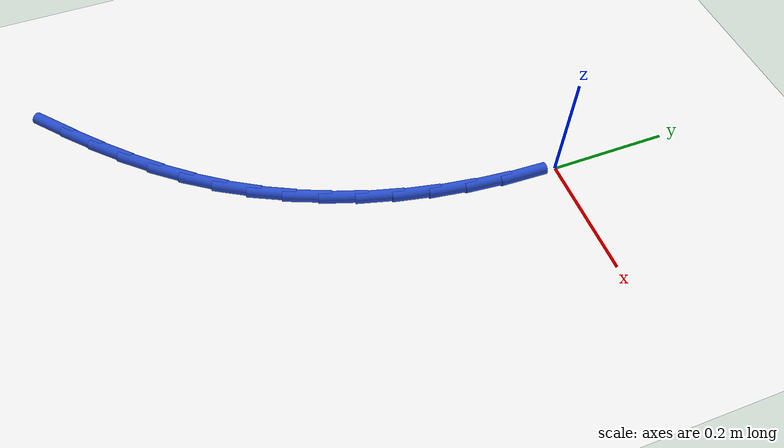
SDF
<sdf version="1.6">
 <world name="default">
  <model name="ground_plane">
   <static>1</static>
   <link name="link">
    <collision name="collision">
     <geometry><plane><normal>0 0 1</normal><size>100 100</size></plane></geometry>
     <surface><friction><ode><mu>100</mu><mu2>50</mu2></ode></friction></surface>
    </collision>
    <visual name="visual">
     <cast_shadows>0</cast_shadows>
     <geometry><plane><normal>0 0 1</normal><size>100 100</size></plane></geometry>
     <material>
      <script><uri>file://media/materials/scripts/gazebo.material</uri><name>Gazebo/WhiteGlow</name></script>
     </material>
    </visual>
   </link>
  </model>
  <model name="line">
   <link name="link_105">
    <pose>-0.3678926228386429 -0.7575360090603183 0.01 0 1.57 0.7230931498649856</pose>
    <collision name="collision">
     <geometry><cylinder><radius>0.01</radius><length>0.08</length></cylinder></geometry>
    </collision>
    <visual name="visual">
     <material>
      <script><name>Gazebo/Blue</name><uri>file://media/materials/scripts/gazebo.material</uri></script>
     </material>
     <geometry><cylinder><radius>0.01</radius><length>0.08</length></cylinder></geometry>
    </visual>
   </link>
   <link name="link_106">
    <pose>-0.32387969291070845 -0.7186921621147895 0.01 0 1.57 0.7550211922033903</pose>
    <collision name="collision">
     <geometry><cylinder><radius>0.01</radius><length>0.08</length></cylinder></geometry>
    </collision>
    <visual name="visual">
     <material>
      <script><name>Gazebo/Blue</name><uri>file://media/materials/scripts/gazebo.material</uri></script>
     </material>
     <geometry><cylinder><radius>0.01</radius><length>0.08</length></cylinder></geometry>
    </visual>
   </link>
   <link name="link_107">
    <pose>-0.28151702082325736 -0.6788280589836286 0.01 0 1.57 0.7957234368443996</pose>
    <collision name="collision">
     <geometry><cylinder><radius>0.01</radius><length>0.08</length></cylinder></geometry>
    </collision>
    <visual name="visual">
     <material>
      <script><name>Gazebo/Blue</name><uri>file://media/materials/scripts/gazebo.material</uri></script>
     </material>
     <geometry><cylinder><radius>0.01</radius><length>0.08</length></cylinder></geometry>
    </visual>
   </link>
   <link name="link_108">
    <pose>-0.24117397403063767 -0.6376431841907465 0.01 0 1.57 0.8454064520314997</pose>
    <collision name="collision">
     <geometry><cylinder><radius>0.01</radius><length>0.08</length></cylinder></geometry>
    </collision>
    <visual name="visual">
     <material>
      <script><name>Gazebo/Blue</name><uri>file://media/materials/scripts/gazebo.material</uri></script>
     </material>
     <geometry><cylinder><radius>0.01</radius><length>0.08</length></cylinder></geometry>
    </visual>
   </link>
   <link name="link_109">
    <pose>-0.20321991998719866 -0.5948370222600547 0.01 0 1.57 0.9041046264192979</pose>
    <collision name="collision">
     <geometry><cylinder><radius>0.01</radius><length>0.08</length></cylinder></geometry>
    </collision>
    <visual name="visual">
     <material>
      <script><name>Gazebo/Blue</name><uri>file://media/materials/scripts/gazebo.material</uri></script>
     </material>
     <geometry><cylinder><radius>0.01</radius><length>0.08</length></cylinder></geometry>
    </visual>
   </link>
   <link name="link_110">
    <pose>-0.16802422614728812 -0.5501090577154636 0.01 0 1.57 0.9715576994289519</pose>
    <collision name="collision">
     <geometry><cylinder><radius>0.01</radius><length>0.08</length></cylinder></geometry>
    </collision>
    <visual name="visual">
     <material>
      <script><name>Gazebo/Blue</name><uri>file://media/materials/scripts/gazebo.material</uri></script>
     </material>
     <geometry><cylinder><radius>0.01</radius><length>0.08</length></cylinder></geometry>
    </visual>
   </link>
   <link name="link_111">
    <pose>-0.13595625996525454 -0.5031587750808839 0.01 0 1.57 1.045540332119404</pose>
    <collision name="collision">
     <geometry><cylinder><radius>0.01</radius><length>0.08</length></cylinder></geometry>
    </collision>
    <visual name="visual">
     <material>
      <script><name>Gazebo/Blue</name><uri>file://media/materials/scripts/gazebo.material</uri></script>
     </material>
     <geometry><cylinder><radius>0.01</radius><length>0.08</length></cylinder></geometry>
    </visual>
   </link>
   <link name="link_112">
    <pose>-0.10732927230121447 -0.4537645997727636 0.01 0 1.57 1.1179112955550574</pose>
    <collision name="collision">
     <geometry><cylinder><radius>0.01</radius><length>0.08</length></cylinder></geometry>
    </collision>
    <visual name="visual">
     <material>
      <script><name>Gazebo/Blue</name><uri>file://media/materials/scripts/gazebo.material</uri></script>
     </material>
     <geometry><cylinder><radius>0.01</radius><length>0.08</length></cylinder></geometry>
    </visual>
   </link>
   <link name="link_113">
    <pose>-0.08218319614213968 -0.4020894416394417 0.01 0 1.57 1.186476899515521</pose>
    <collision name="collision">
     <geometry><cylinder><radius>0.01</radius><length>0.08</length></cylinder></geometry>
    </collision>
    <visual name="visual">
     <material>
      <script><name>Gazebo/Blue</name><uri>file://media/materials/scripts/gazebo.material</uri></script>
     </material>
     <geometry><cylinder><radius>0.01</radius><length>0.08</length></cylinder></geometry>
    </visual>
   </link>
   <link name="link_114">
    <pose>-0.060474875482920847 -0.3484130943010638 0.01 0 1.57 1.2515198992931922</pose>
    <collision name="collision">
     <geometry><cylinder><radius>0.01</radius><length>0.08</length></cylinder></geometry>
    </collision>
    <visual name="visual">
     <material>
      <script><name>Gazebo/Blue</name><uri>file://media/materials/scripts/gazebo.material</uri></script>
     </material>
     <geometry><cylinder><radius>0.01</radius><length>0.08</length></cylinder></geometry>
    </visual>
   </link>
   <link name="link_115">
    <pose>-0.04216113501954739 -0.29301537852611803 0.01 0 1.57 1.3133963545750251</pose>
    <collision name="collision">
     <geometry><cylinder><radius>0.01</radius><length>0.08</length></cylinder></geometry>
    </collision>
    <visual name="visual">
     <material>
      <script><name>Gazebo/Blue</name><uri>file://media/materials/scripts/gazebo.material</uri></script>
     </material>
     <geometry><cylinder><radius>0.01</radius><length>0.08</length></cylinder></geometry>
    </visual>
   </link>
   <link name="link_116">
    <pose>-0.027198799448009344 -0.23617611508309508 0.01 0 1.57 1.3725072432886058</pose>
    <collision name="collision">
     <geometry><cylinder><radius>0.01</radius><length>0.08</length></cylinder></geometry>
    </collision>
    <visual name="visual">
     <material>
      <script><name>Gazebo/Blue</name><uri>file://media/materials/scripts/gazebo.material</uri></script>
     </material>
     <geometry><cylinder><radius>0.01</radius><length>0.08</length></cylinder></geometry>
    </visual>
   </link>
   <link name="link_117">
    <pose>-0.015544693464296034 -0.178175124740483 0.01 0 1.57 1.429278602200125</pose>
    <collision name="collision">
     <geometry><cylinder><radius>0.01</radius><length>0.08</length></cylinder></geometry>
    </collision>
    <visual name="visual">
     <material>
      <script><name>Gazebo/Blue</name><uri>file://media/materials/scripts/gazebo.material</uri></script>
     </material>
     <geometry><cylinder><radius>0.01</radius><length>0.08</length></cylinder></geometry>
    </visual>
   </link>
   <link name="link_118">
    <pose>-0.007155641764396971 -0.11929222826677063 0.01 0 1.57 1.4841486606717382</pose>
    <collision name="collision">
     <geometry><cylinder><radius>0.01</radius><length>0.08</length></cylinder></geometry>
    </collision>
    <visual name="visual">
     <material>
      <script><name>Gazebo/Blue</name><uri>file://media/materials/scripts/gazebo.material</uri></script>
     </material>
     <geometry><cylinder><radius>0.01</radius><length>0.08</length></cylinder></geometry>
    </visual>
   </link>
   <link name="link_119">
    <pose>-0.001988469044301725 -0.05980724643044613 0.01 0 1.57 1.5375606079465636</pose>
    <collision name="collision">
     <geometry><cylinder><radius>0.01</radius><length>0.08</length></cylinder></geometry>
    </collision>
    <visual name="visual">
     <material>
      <script><name>Gazebo/Blue</name><uri>file://media/materials/scripts/gazebo.material</uri></script>
     </material>
     <geometry><cylinder><radius>0.01</radius><length>0.08</length></cylinder></geometry>
    </visual>
   </link>
  </model>
 </world>
</sdf>
